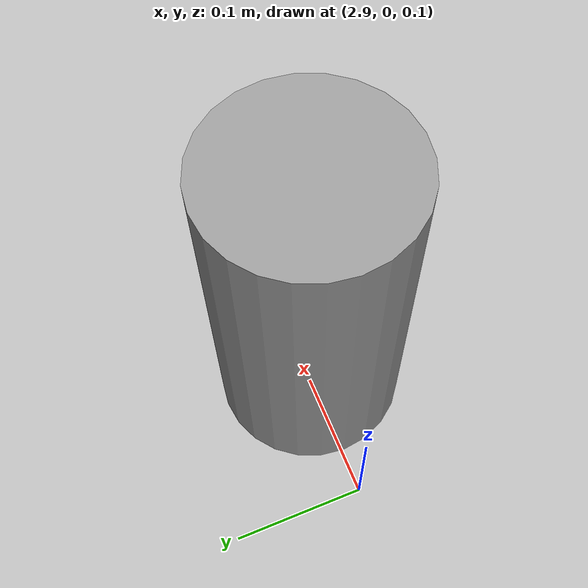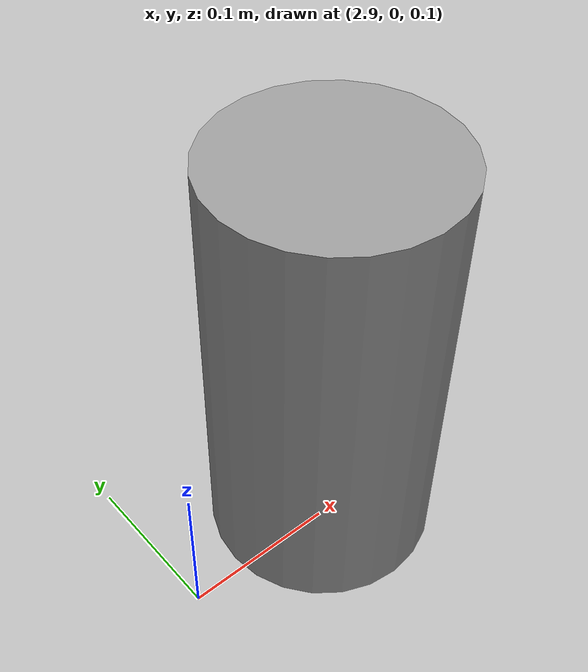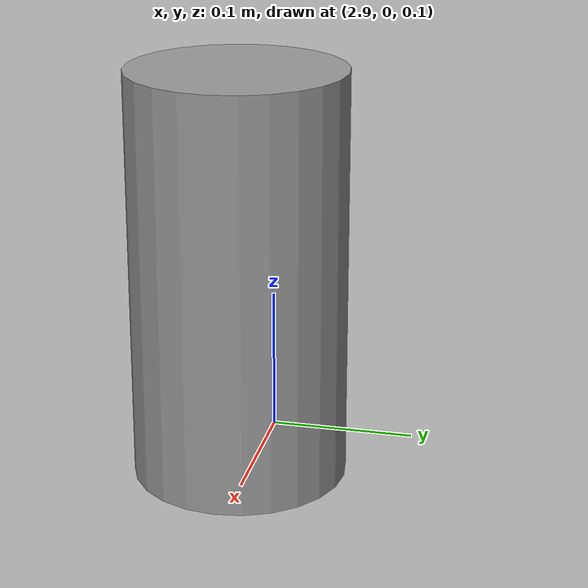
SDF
<?xml version="1.0" ?>
<sdf version="1.4">
  <!-- We use a custom world for the rrbot so that the camera angle is launched correctly -->

  <world name="OBS_world">

    <physics type="ode">
      <real_time_update_rate>2000</real_time_update_rate>
      <max_step_size>0.0005</max_step_size>
    </physics>

    <include>
      <uri>model://ground_plane</uri>
    </include>

    <include>
      <uri>model://FIRA_Ground</uri>
      <pose>1.75 0.15 0.001 0.0 0.0 1.5708</pose>
    </include>

    <!-- Global light source -->
    <include>
      <uri>model://sun</uri>
    </include>

    <include>
      <uri>model://SP_Goal</uri>
      <pose>3 0 0.25 0.0 0.0 1.5708</pose>
    </include>

    <!--plugin name="gazebo_ros_control" filename="libgazebo_ros_control.so"/-->
    <!--plugin name="kidsize" filename="libkidsize.so"/-->
  </world>
</sdf>

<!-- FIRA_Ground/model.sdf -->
<sdf version="1.4">
  <model name="FIRA_Ground">
    <pose>0 0 0.0001  0 0 0</pose>
     <static>true</static>
    <link name="link">
      <collision name="collision">
        <geometry>
          <mesh>
            <uri>model://FIRA_Ground/field_0407.DAE</uri>
          </mesh>
        </geometry>
      </collision>
      <visual name="visual">
        <geometry>
          <mesh>
            <uri>model://FIRA_Ground/field_0407.DAE</uri>
          </mesh>
        </geometry>
      </visual>
    </link>
  </model>
</sdf>

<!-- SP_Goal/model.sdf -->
<sdf version='1.6'>
  <model name='SP_Goal'>
    <link name='link'>
      <inertial>
        <mass>200</mass>
        <inertia>
          <ixx>0.145833</ixx>
          <ixy>0</ixy>
          <ixz>0</ixz>
          <iyy>0.145833</iyy>
          <iyz>0</iyz>
          <izz>0.125</izz>
        </inertia>
        <pose frame=''>0 0 0 0 -0 0</pose>
      </inertial>
      <self_collide>0</self_collide>
      <enable_wind>0</enable_wind>
      <kinematic>0</kinematic>
      <pose frame=''>0 0 0 0 -0 0</pose>
      <gravity>1</gravity>
      <visual name='visual'>
        <geometry>
          <cylinder>
            <radius>0.07</radius>
            <length>0.268324</length>
          </cylinder>
        </geometry>
        <material>
          <script>
            <name>Gazebo/Grey</name>
            <uri>file://media/materials/scripts/gazebo.material</uri>
          </script>
          <shader type='pixel'>
            <normal_map>__default__</normal_map>
          </shader>
        </material>
        <pose frame=''>0 0 0 0 -0 0</pose>
        <transparency>0</transparency>
        <cast_shadows>1</cast_shadows>
      </visual>
      <collision name='collision'>
        <laser_retro>0</laser_retro>
        <max_contacts>10</max_contacts>
        <pose frame=''>0 0 0 0 -0 0</pose>
        <geometry>
          <cylinder>
            <radius>0.07</radius>
            <length>0.268324</length>
          </cylinder>
        </geometry>
        <surface>
          <friction>
            <ode>
              <mu>1</mu>
              <mu2>1</mu2>
              <fdir1>0 0 0</fdir1>
              <slip1>0</slip1>
              <slip2>0</slip2>
            </ode>
            <torsional>
              <coefficient>1</coefficient>
              <patch_radius>0</patch_radius>
              <surface_radius>0</surface_radius>
              <use_patch_radius>1</use_patch_radius>
              <ode>
                <slip>0</slip>
              </ode>
            </torsional>
          </friction>
          <bounce>
            <restitution_coefficient>0</restitution_coefficient>
            <threshold>1e+06</threshold>
          </bounce>
          <contact>
            <collide_without_contact>0</collide_without_contact>
            <collide_without_contact_bitmask>1</collide_without_contact_bitmask>
            <collide_bitmask>1</collide_bitmask>
            <ode>
              <soft_cfm>0</soft_cfm>
              <soft_erp>0.2</soft_erp>
              <kp>1e+13</kp>
              <kd>1</kd>
              <max_vel>0.01</max_vel>
              <min_depth>0</min_depth>
            </ode>
            <bullet>
              <split_impulse>1</split_impulse>
              <split_impulse_penetration_threshold>-0.01</split_impulse_penetration_threshold>
              <soft_cfm>0</soft_cfm>
              <soft_erp>0.2</soft_erp>
              <kp>1e+13</kp>
              <kd>1</kd>
            </bullet>
          </contact>
        </surface>
      </collision>
    </link>
    <static>0</static>
    <allow_auto_disable>1</allow_auto_disable>
  </model>
</sdf>
